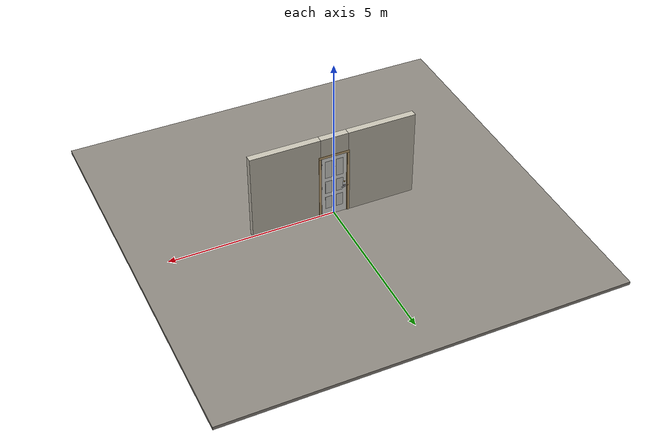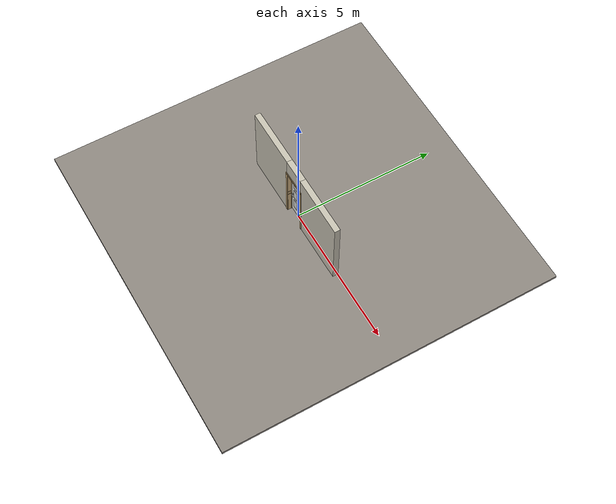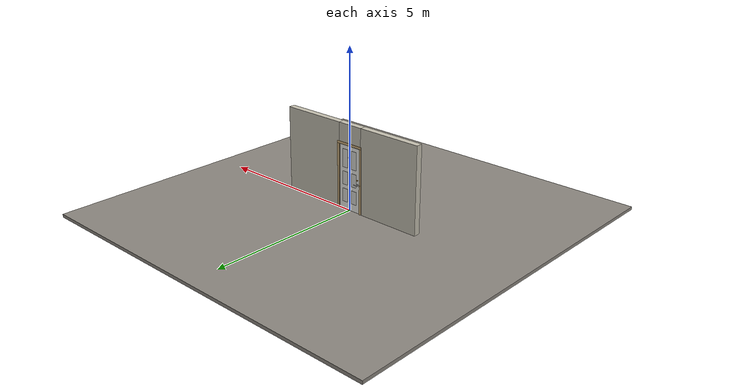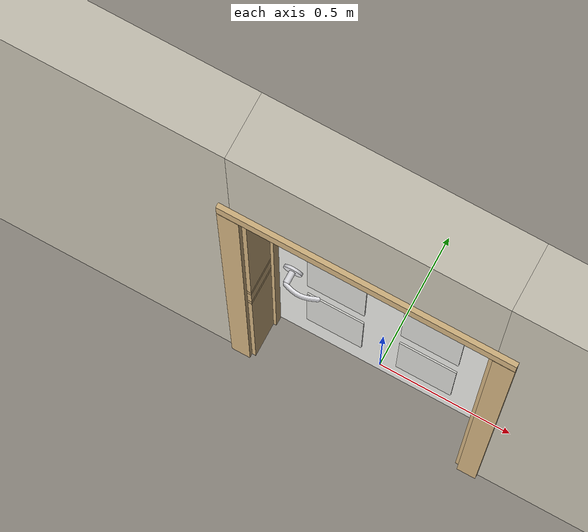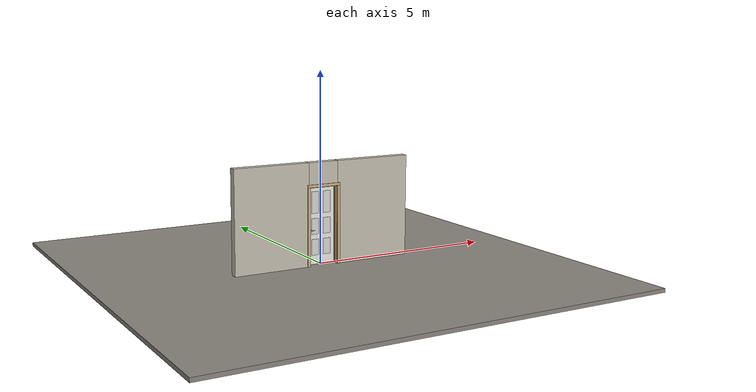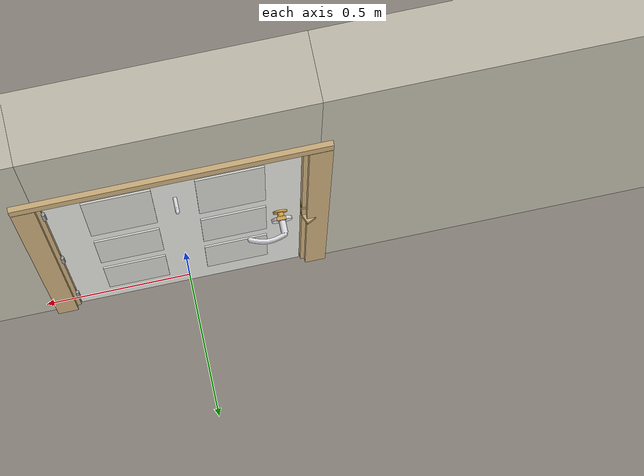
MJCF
<?xml version="1.0" ?>
<mujoco model="db0441_swing_single_full">
  <compiler angle="radian" meshdir="../../hardware" texturedir="../../textures" autolimits="true" inertiafromgeom="false"/>
  <option timestep="0.002" integrator="implicitfast" cone="elliptic" impratio="10" noslip_iterations="3">
    <flag multiccd="enable"/>
  </option>
  <size memory="16M"/>
  <default>
    <geom condim="4" solref="0.005 1" solimp="0.95 0.99 0.001"/>
    <joint solreflimit="0.005 1" solimplimit="0.95 0.99 0.001"/>
    <tendon solreflimit="0.005 1"/>
    <equality solref="0.002 1"/>
  </default>
  <visual>
    <headlight ambient="0.4 0.4 0.4" diffuse="0.7 0.7 0.7" specular="0.2 0.2 0.2"/>
    <quality shadowsize="4096"/>
    <map znear="0.01" zfar="60"/>
  </visual>
  <asset>
    <mesh name="coat_hook_d622d37ad0" file="coat_hook_d622d37ad0.obj"/>
    <mesh name="hinge_96510cf394" file="hinge_96510cf394.obj"/>
    <mesh name="hinge_jamb_7fd4ca52b2" file="hinge_jamb_7fd4ca52b2.obj"/>
    <mesh name="lever_748f08efca" file="lever_748f08efca.obj"/>
    <mesh name="thumbturn_eb5c9899a3" file="thumbturn_eb5c9899a3.obj"/>
    <material name="mat_floor" rgba="0.55 0.53 0.5 1" specular="0.2" shininess="0.15" reflectance="0"/>
    <material name="mat_wall" rgba="0.78 0.76 0.7 1" specular="0.2" shininess="0.1" reflectance="0"/>
    <material name="mat_leaf" rgba="0.93 0.93 0.91 1" specular="0.2" shininess="0.45" reflectance="0"/>
    <material name="mat_leaf_panel" rgba="0.856 0.856 0.837 1" specular="0.2" shininess="0.45" reflectance="0"/>
    <material name="mat_hinge" rgba="0.65 0.66 0.68 1" specular="0.74" shininess="0.5" reflectance="0.36"/>
    <material name="mat_op_chrome" rgba="0.9 0.9 0.92 1" specular="0.8" shininess="0.9" reflectance="0.4"/>
    <material name="mat_trim" rgba="0.85 0.66 0.3 1" specular="0.8" shininess="0.75" reflectance="0.4"/>
    <material name="mat_bolt" rgba="0.85 0.66 0.3 1" specular="0.8" shininess="0.75" reflectance="0.4"/>
    <material name="mat_deadbolt" rgba="0.85 0.66 0.3 1" specular="0.8" shininess="0.75" reflectance="0.4"/>
    <material name="mat_frame" rgba="0.82 0.7 0.5 1" specular="0.2" shininess="0.45" reflectance="0"/>
    <material name="mat_hook" rgba="0.9 0.9 0.92 1" specular="0.8" shininess="0.9" reflectance="0.4"/>
    <texture name="skybox" type="skybox" builtin="gradient" rgb1="0.6 0.7 0.85" rgb2="0.9 0.92 0.95" width="256" height="256"/>
  </asset>
  <worldbody>
    <light name="sun" pos="1.5 -2.5 4" dir="-0.3 0.5 -0.8" directional="true" diffuse="0.8 0.8 0.8" specular="0.3 0.3 0.3" castshadow="true"/>
    <light name="fill" pos="-1.5 2.5 3" dir="0.3 -0.5 -0.7" directional="true" diffuse="0.35 0.35 0.4" castshadow="false"/>
    <camera name="robot_view" pos="0 -2.617687 1.734312" xyaxes="1 0 0 0 0.26963 0.962964" fovy="52"/>
    <camera name="far_view" pos="0 2.466687 1.734312" xyaxes="-1 0 0 0 -0.26963 0.962964" fovy="52"/>
    <camera name="iso" pos="-1.932062 -2.210938 2.141063" xyaxes="0.741536 -0.670913 0 0.242917 0.268487 0.932151" fovy="46"/>
    <camera name="detail_handle" pos="-0.0509 -0.8725 1.194" xyaxes="0.97561 0.219512 0 -0.070934 0.315262 0.94635" fovy="38"/>
    <geom name="floor" type="box" size="6 6 0.05" pos="0 0 -0.05" material="mat_floor" group="0" contype="1" conaffinity="1" friction="0.8 0.005 0.0001" density="2400"/>
    <geom name="wall_left" type="box" size="1.03325 0.1 1.35" pos="-1.46675 -0.0755 1.35" material="mat_wall" group="0" contype="1" conaffinity="1" friction="0.6 0.005 0.0001" density="800"/>
    <geom name="wall_right" type="box" size="1.04825 0.1 1.35" pos="1.45175 -0.0755 1.35" material="mat_wall" group="0" contype="1" conaffinity="1" friction="0.6 0.005 0.0001" density="800"/>
    <geom name="wall_header" type="box" size="0.4185 0.1 0.303" pos="-0.015 -0.0755 2.397" material="mat_wall" group="0" contype="1" conaffinity="1" friction="0.6 0.005 0.0001" density="800"/>
    <geom name="hinge_0_jamb" type="mesh" mesh="hinge_jamb_7fd4ca52b2" pos="0.3815 0.0245 0.259" quat="0 0 0 1" material="mat_hinge" group="1" contype="0" conaffinity="0" density="7850"/>
    <geom name="hinge_1_jamb" type="mesh" mesh="hinge_jamb_7fd4ca52b2" pos="0.3815 0.0245 1.025" quat="0 0 0 1" material="mat_hinge" group="1" contype="0" conaffinity="0" density="7850"/>
    <geom name="hinge_2_jamb" type="mesh" mesh="hinge_jamb_7fd4ca52b2" pos="0.3815 0.0245 1.861" quat="0 0 0 1" material="mat_hinge" group="1" contype="0" conaffinity="0" density="7850"/>
    <geom name="leaf_deadbolt_strike_b" type="box" size="0.0155 0.003 0.0005" pos="-0.384 0 1.0355" quat="0.5 0.5 0.5 0.5" material="mat_deadbolt" group="1" contype="0" conaffinity="0" density="7800"/>
    <geom name="leaf_deadbolt_strike_l" type="box" size="0.003 0.0155 0.0005" pos="-0.384 -0.0125 1.054" quat="0.5 0.5 0.5 0.5" material="mat_deadbolt" group="1" contype="0" conaffinity="0" density="7800"/>
    <geom name="leaf_deadbolt_strike_t" type="box" size="0.0155 0.003 0.0005" pos="-0.384 0 1.0725" quat="0.5 0.5 0.5 0.5" material="mat_deadbolt" group="1" contype="0" conaffinity="0" density="7800"/>
    <geom name="leaf_deadbolt_strike_r" type="box" size="0.003 0.0155 0.0005" pos="-0.384 0.0125 1.054" quat="0.5 0.5 0.5 0.5" material="mat_deadbolt" group="1" contype="0" conaffinity="0" density="7800"/>
    <geom name="jamb_hinge" type="box" size="0.0095 0.1 1.0225" pos="0.394 -0.0755 1.0225" material="mat_frame" group="0" contype="1" conaffinity="1" friction="0.6 0.005 0.0001" density="400"/>
    <geom name="strike_914_wall_n" type="box" size="0.0245 0.083825 0.0167" pos="-0.409 -0.091675 0.914" material="mat_frame" group="0" contype="1" conaffinity="1" friction="0.6 0.005 0.0001" density="400"/>
    <geom name="strike_914_wall_p" type="box" size="0.0245 0.008 0.0167" pos="-0.409 0.01585 0.914" material="mat_frame" group="0" contype="1" conaffinity="1" friction="0.6 0.005 0.0001" density="400"/>
    <geom name="strike_914_ramp" type="box" size="0.0245 0.01649 0.0167" pos="-0.413636 0.028673 0.914" quat="0.977148 0 0 0.212558" material="mat_frame" group="0" contype="1" conaffinity="1" friction="0.12 0.005 0.0001" density="400"/>
    <geom name="strike_914_back" type="box" size="0.01615 0.00785 0.0167" pos="-0.41735 0 0.914" material="mat_frame" group="0" contype="1" conaffinity="1" friction="0.6 0.005 0.0001" density="400"/>
    <geom name="strike_1054_wall_n" type="box" size="0.0245 0.083 0.0155" pos="-0.409 -0.0925 1.054" material="mat_frame" group="0" contype="1" conaffinity="1" friction="0.6 0.005 0.0001" density="400"/>
    <geom name="strike_1054_wall_p" type="box" size="0.0245 0.0075 0.0155" pos="-0.409 0.017 1.054" material="mat_frame" group="0" contype="1" conaffinity="1" friction="0.6 0.005 0.0001" density="400"/>
    <geom name="strike_1054_back" type="box" size="0.0098 0.0095 0.0155" pos="-0.4237 0 1.054" material="mat_frame" group="0" contype="1" conaffinity="1" friction="0.6 0.005 0.0001" density="400"/>
    <geom name="jamb_strike_0" type="box" size="0.0245 0.1 0.44865" pos="-0.409 -0.0755 0.44865" material="mat_frame" group="0" contype="1" conaffinity="1" friction="0.6 0.005 0.0001" density="400"/>
    <geom name="jamb_strike_1" type="box" size="0.0245 0.1 0.0539" pos="-0.409 -0.0755 0.9846" material="mat_frame" group="0" contype="1" conaffinity="1" friction="0.6 0.005 0.0001" density="400"/>
    <geom name="jamb_strike_2" type="box" size="0.0245 0.1 0.48775" pos="-0.409 -0.0755 1.55725" material="mat_frame" group="0" contype="1" conaffinity="1" friction="0.6 0.005 0.0001" density="400"/>
    <geom name="jamb_head" type="box" size="0.4185 0.1 0.0095" pos="-0.015 -0.0755 2.0545" material="mat_frame" group="0" contype="1" conaffinity="1" friction="0.6 0.005 0.0001" density="400"/>
    <geom name="head_stud" type="box" size="0.4185 0.1 0.015" pos="-0.015 -0.0755 2.079" material="mat_wall" group="0" contype="1" conaffinity="1" friction="0.6 0.005 0.0001" density="500"/>
    <geom name="stop_hinge" type="box" size="0.0055 0.016 1.0225" pos="0.379 -0.034 1.0225" material="mat_frame" group="0" contype="1" conaffinity="1" friction="0.6 0.005 0.0001" density="400"/>
    <geom name="stop_strike" type="box" size="0.0055 0.016 1.0225" pos="-0.379 -0.034 1.0225" material="mat_frame" group="0" contype="1" conaffinity="1" friction="0.6 0.005 0.0001" density="400"/>
    <geom name="stop_head" type="box" size="0.3845 0.016 0.0055" pos="0 -0.034 2.0395" material="mat_frame" group="0" contype="1" conaffinity="1" friction="0.6 0.005 0.0001" density="400"/>
    <geom name="casing_l_n" type="box" size="0.035 0.008 1.032" pos="-0.4335 -0.1835 1.0225" material="mat_frame" group="2" contype="0" conaffinity="0" density="400"/>
    <geom name="casing_r_n" type="box" size="0.035 0.008 1.032" pos="0.4335 -0.1835 1.0225" material="mat_frame" group="2" contype="0" conaffinity="0" density="400"/>
    <geom name="casing_h_n" type="box" size="0.4685 0.008 0.035" pos="0 -0.1835 2.094" material="mat_frame" group="2" contype="0" conaffinity="0" density="400"/>
    <geom name="casing_l_p" type="box" size="0.035 0.008 1.032" pos="-0.4335 0.0325 1.0225" material="mat_frame" group="2" contype="0" conaffinity="0" density="400"/>
    <geom name="casing_r_p" type="box" size="0.035 0.008 1.032" pos="0.4335 0.0325 1.0225" material="mat_frame" group="2" contype="0" conaffinity="0" density="400"/>
    <geom name="casing_h_p" type="box" size="0.4685 0.008 0.035" pos="0 0.0325 2.094" material="mat_frame" group="2" contype="0" conaffinity="0" density="400"/>
    <site name="approach_point" pos="0 -1.5 0" quat="1 0 0 0" size="0.05" rgba="0.2 0.9 0.2 0.5" group="4"/>
    <site name="goal_point" pos="0 1.5 0" quat="1 0 0 0" size="0.05" rgba="0.2 0.9 0.2 0.5" group="4"/>
    <site name="door_plane_center" pos="0 0 1.0225" quat="1 0 0 0" size="0.02" rgba="0.2 0.9 0.2 0.5" group="4"/>
    <body name="leaf" pos="0.3845 0 0">
      <inertial pos="-0.373089 0.000685 1.029062" mass="13.575261" quat="0.499538 0.5009 -0.498859 0.5007" diaginertia="0.696617532 4.705459327 5.398772136"/>
      <joint name="leaf_hinge" type="hinge" axis="0 0 -1" pos="-0.003 0.0245 0" limited="true" range="0 2.094395" damping="0.173726" frictionloss="0.374502" armature="0.02"/>
      <geom name="leaf_slab" type="box" size="0.381 0.0175 1.016" pos="-0.384 0 1.025" material="mat_leaf" group="0" contype="1" conaffinity="1" friction="0.35 0.005 0.0001" density="1"/>
      <geom name="leaf_panel_0_n" type="box" size="0.103 0.003 0.209032" pos="-0.216 -0.0205 0.461552" material="mat_leaf_panel" group="1" contype="0" conaffinity="0" density="1"/>
      <geom name="leaf_panel_0_p" type="box" size="0.103 0.003 0.209032" pos="-0.216 0.0205 0.461552" material="mat_leaf_panel" group="1" contype="0" conaffinity="0" density="1"/>
      <geom name="leaf_panel_1_n" type="box" size="0.103 0.003 0.209032" pos="-0.552 -0.0205 0.461552" material="mat_leaf_panel" group="1" contype="0" conaffinity="0" density="1"/>
      <geom name="leaf_panel_1_p" type="box" size="0.103 0.003 0.209032" pos="-0.552 0.0205 0.461552" material="mat_leaf_panel" group="1" contype="0" conaffinity="0" density="1"/>
      <geom name="leaf_panel_2_n" type="box" size="0.103 0.003 0.209032" pos="-0.216 -0.0205 1.009616" material="mat_leaf_panel" group="1" contype="0" conaffinity="0" density="1"/>
      <geom name="leaf_panel_2_p" type="box" size="0.103 0.003 0.209032" pos="-0.216 0.0205 1.009616" material="mat_leaf_panel" group="1" contype="0" conaffinity="0" density="1"/>
      <geom name="leaf_panel_3_n" type="box" size="0.103 0.003 0.209032" pos="-0.552 -0.0205 1.009616" material="mat_leaf_panel" group="1" contype="0" conaffinity="0" density="1"/>
      <geom name="leaf_panel_3_p" type="box" size="0.103 0.003 0.209032" pos="-0.552 0.0205 1.009616" material="mat_leaf_panel" group="1" contype="0" conaffinity="0" density="1"/>
      <geom name="leaf_panel_4_n" type="box" size="0.103 0.003 0.285376" pos="-0.216 -0.0205 1.634024" material="mat_leaf_panel" group="1" contype="0" conaffinity="0" density="1"/>
      <geom name="leaf_panel_4_p" type="box" size="0.103 0.003 0.285376" pos="-0.216 0.0205 1.634024" material="mat_leaf_panel" group="1" contype="0" conaffinity="0" density="1"/>
      <geom name="leaf_panel_5_n" type="box" size="0.103 0.003 0.285376" pos="-0.552 -0.0205 1.634024" material="mat_leaf_panel" group="1" contype="0" conaffinity="0" density="1"/>
      <geom name="leaf_panel_5_p" type="box" size="0.103 0.003 0.285376" pos="-0.552 0.0205 1.634024" material="mat_leaf_panel" group="1" contype="0" conaffinity="0" density="1"/>
      <geom name="hinge_0" type="mesh" mesh="hinge_96510cf394" pos="-0.003 0.0245 0.259" quat="0 0 0 1" material="mat_hinge" group="1" contype="0" conaffinity="0" density="7850"/>
      <geom name="hinge_1" type="mesh" mesh="hinge_96510cf394" pos="-0.003 0.0245 1.025" quat="0 0 0 1" material="mat_hinge" group="1" contype="0" conaffinity="0" density="7850"/>
      <geom name="hinge_2" type="mesh" mesh="hinge_96510cf394" pos="-0.003 0.0245 1.861" quat="0 0 0 1" material="mat_hinge" group="1" contype="0" conaffinity="0" density="7850"/>
      <geom name="leaf_latch_bolt_faceplate" type="box" size="0.0006 0.01235 0.0267" pos="-0.7644 0 0.914" material="mat_bolt" group="1" contype="0" conaffinity="0" density="8500"/>
      <geom name="leaf_deadbolt_faceplate" type="box" size="0.0006 0.014 0.0245" pos="-0.7644 0 1.054" material="mat_deadbolt" group="1" contype="0" conaffinity="0" density="8500"/>
      <geom name="coat_hook" type="mesh" mesh="coat_hook_d622d37ad0" pos="-0.384 0.0175 1.691" quat="0 0 0.707107 0.707107" material="mat_hook" group="2" contype="0" conaffinity="0" density="7000"/>
      <site name="leaf_edge_mid" pos="-0.765 0 1.016" quat="1 0 0 0" size="0.02" rgba="0.2 0.9 0.2 0.5" group="4"/>
      <body name="leaf_handle" pos="-0.705 0 0.914">
        <inertial pos="0.024417 0 0" mass="0.839807" quat="0.707107 0 0 -0.707107" diaginertia="0.001182467 0.002815434 0.003861215"/>
        <joint name="leaf_handle_hinge" type="hinge" axis="0 1 0" limited="true" range="0 0.87" damping="0.205084" frictionloss="0.04" stiffness="0.9" springref="-0.444444" armature="0.01"/>
        <geom name="leaf_handle_spindle" type="cylinder" size="0.006 0.0255" pos="0 0 0" quat="0.707107 -0.707107 0 0" material="mat_op_chrome" group="1" contype="0" conaffinity="0" density="7850"/>
        <geom name="leaf_handle_lever_n" type="mesh" mesh="lever_748f08efca" pos="0 -0.0175 0" quat="0 0 -0.707107 0.707107" material="mat_op_chrome" group="1" contype="0" conaffinity="0" density="3000"/>
        <geom name="leaf_handle_lever_col_n" type="capsule" size="0.008 0.048" pos="0.056 -0.0725 0" quat="0.707107 0 0.707107 0" material="mat_op_chrome" group="3" contype="1" conaffinity="1" rgba="0.8 0.3 0.3 0.25" friction="0.7 0.01 0.0001" density="3000"/>
        <geom name="leaf_handle_hub_col_n" type="cylinder" size="0.012 0.022" pos="0 -0.0475 0" quat="0.707107 -0.707107 0 0" material="mat_op_chrome" group="3" contype="1" conaffinity="1" rgba="0.8 0.3 0.3 0.25" friction="0.6 0.005 0.0001" density="3000"/>
        <geom name="leaf_handle_lever_p" type="mesh" mesh="lever_748f08efca" pos="0 0.0175 0" quat="0 0 0.707107 0.707107" material="mat_op_chrome" group="1" contype="0" conaffinity="0" density="3000"/>
        <geom name="leaf_handle_lever_col_p" type="capsule" size="0.008 0.048" pos="0.056 0.0725 0" quat="0.707107 0 0.707107 0" material="mat_op_chrome" group="3" contype="1" conaffinity="1" rgba="0.8 0.3 0.3 0.25" friction="0.7 0.01 0.0001" density="3000"/>
        <geom name="leaf_handle_hub_col_p" type="cylinder" size="0.012 0.022" pos="0 0.0475 0" quat="0.707107 -0.707107 0 0" material="mat_op_chrome" group="3" contype="1" conaffinity="1" rgba="0.8 0.3 0.3 0.25" friction="0.6 0.005 0.0001" density="3000"/>
        <site name="leaf_handle_grip_n" pos="0.0896 -0.0725 0" quat="1 0 0 0" size="0.012" rgba="0.2 0.9 0.2 0.5" group="4"/>
        <site name="leaf_handle_grip_p" pos="0.0896 0.0725 0" quat="1 0 0 0" size="0.012" rgba="0.2 0.9 0.2 0.5" group="4"/>
      </body>
      <body name="leaf_latch_bolt" pos="-0.765 0 0.914">
        <inertial pos="0.00865 0 0" mass="0.041419" quat="0.92388 0.382683 0 0" diaginertia="0.000000798 0.000005598 0.000005598"/>
        <joint name="leaf_latch_bolt_slide" type="slide" axis="1 0 0" limited="true" range="0 0.0127" damping="2" frictionloss="0.3" stiffness="300" springref="-0.008333" armature="0.1"/>
        <geom name="leaf_latch_bolt_capsule" type="capsule" size="0.00635 0.015" pos="0.00865 0 0" quat="0.707107 0 -0.707107 0" material="mat_bolt" group="0" contype="1" conaffinity="1" friction="0.2 0.005 0.0001" density="8500"/>
      </body>
      <body name="leaf_deadbolt" pos="-0.765 0 1.054">
        <inertial pos="0.0277 0 0" mass="0.18836" quat="0 0 0.707107 0.707107" diaginertia="0.000013829 0.000052194 0.000057986"/>
        <joint name="leaf_deadbolt_slide" type="slide" axis="1 0 0" limited="true" range="0 0.0254" damping="5" frictionloss="1.5" armature="0.1" ref="0.0254"/>
        <geom name="leaf_deadbolt_box" type="box" size="0.0277 0.008 0.0125" pos="0.0277 0 0" material="mat_deadbolt" group="0" contype="1" conaffinity="1" friction="0.3 0.005 0.0001" density="8500"/>
      </body>
      <body name="leaf_deadbolt_thumbturn" pos="-0.7 0.0175 1.054">
        <inertial pos="0 0.012928 0" mass="0.178946" quat="0.000001 -0.707107 0.707107 -0.000001" diaginertia="0.000026045 0.000026215 0.000032438"/>
        <joint name="leaf_deadbolt_thumbturn_hinge" type="hinge" axis="0 -1 0" limited="true" range="0 1.5708" damping="0.05" frictionloss="0.3" armature="0.005" ref="1.5708"/>
        <geom name="leaf_deadbolt_thumbturn_mesh" type="mesh" mesh="thumbturn_eb5c9899a3" pos="0 0 0" quat="0.500001 -0.500001 0.499999 0.499999" material="mat_deadbolt" group="0" contype="1" conaffinity="1" friction="0.6 0.005 0.0001" density="7100"/>
        <geom name="leaf_deadbolt_thumbturn_col" type="box" size="0.006 0.012 0.016" pos="0 0.02 0" quat="0.707105 0 -0.707108 0" material="mat_deadbolt" group="3" contype="1" conaffinity="1" rgba="0.8 0.3 0.3 0.25" friction="0.6 0.005 0.0001" density="7100"/>
      </body>
    </body>
  </worldbody>
  <tendon>
    <fixed name="leaf_latch_bolt_coupling" limited="true" range="0 10">
      <joint joint="leaf_latch_bolt_slide" coef="1"/>
      <joint joint="leaf_handle_hinge" coef="-0.016076"/>
    </fixed>
  </tendon>
  <equality>
    <joint name="leaf_deadbolt_couple" joint1="leaf_deadbolt_slide" joint2="leaf_deadbolt_thumbturn_hinge" polycoef="0 0.01617 0 0 0" active="true"/>
  </equality>
  <contact>
    <exclude body1="leaf_deadbolt" body2="leaf_deadbolt_thumbturn"/>
  </contact>
  <sensor>
    <jointpos name="leaf_hinge_pos" joint="leaf_hinge"/>
    <jointvel name="leaf_hinge_vel" joint="leaf_hinge"/>
    <jointpos name="leaf_handle_hinge_pos" joint="leaf_handle_hinge"/>
    <jointvel name="leaf_handle_hinge_vel" joint="leaf_handle_hinge"/>
    <jointpos name="leaf_latch_bolt_slide_pos" joint="leaf_latch_bolt_slide"/>
    <jointvel name="leaf_latch_bolt_slide_vel" joint="leaf_latch_bolt_slide"/>
    <jointpos name="leaf_deadbolt_slide_pos" joint="leaf_deadbolt_slide"/>
    <jointvel name="leaf_deadbolt_slide_vel" joint="leaf_deadbolt_slide"/>
    <jointpos name="leaf_deadbolt_thumbturn_hinge_pos" joint="leaf_deadbolt_thumbturn_hinge"/>
    <jointvel name="leaf_deadbolt_thumbturn_hinge_vel" joint="leaf_deadbolt_thumbturn_hinge"/>
  </sensor>
</mujoco>
